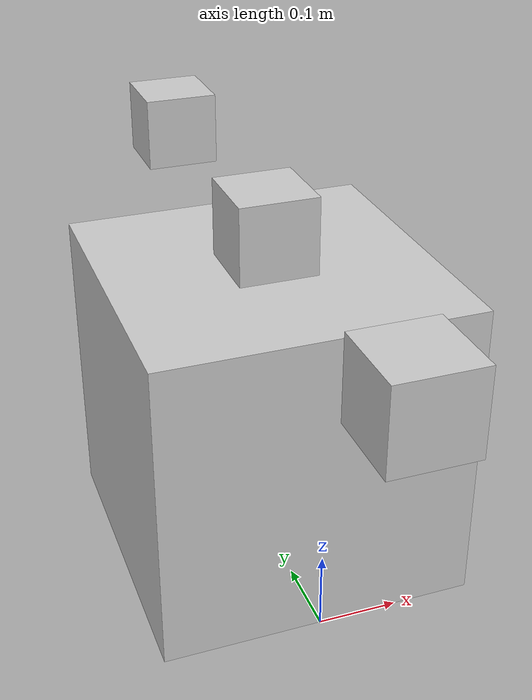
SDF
<?xml version="1.0"?>
<sdf version="1.6">
  <world name="default">

    <model name="M123">
      <model name="M1">
        <pose>0 -0.2 0.45 0 0 0</pose>
        <static>false</static>
        <link name="link">
          <collision name="collision">
            <geometry>
              <box>
                <size>0.1 0.1 0.1</size>
              </box>
            </geometry>
          </collision>
          <visual name="visual">
            <geometry>
              <box>
                <size>0.1 0.1 0.1</size>
              </box>
            </geometry>
            <material>
              <ambient>0.8 0.8 0.8 1</ambient>
              <diffuse>0.8 0.8 0.8 1</diffuse>
              <specular>0.8 0.8 0.8 1</specular>
            </material>
          </visual>
        </link>
      </model>

      <model name="M2">
        <pose>0 0.2 0.45 0 0 0</pose>
        <static>false</static>
        <link name="link">
          <collision name="collision">
            <geometry>
              <box>
                <size>0.1 0.1 0.1</size>
              </box>
            </geometry>
          </collision>
          <visual name="visual">
            <geometry>
              <box>
                <size>0.1 0.1 0.1</size>
              </box>
            </geometry>
            <material>
              <ambient>0.8 0.8 0.8 1</ambient>
              <diffuse>0.8 0.8 0.8 1</diffuse>
              <specular>0.8 0.8 0.8 1</specular>
            </material>
          </visual>
        </link>
      </model>

      <model name="M3">
        <pose>0 0.6 0.45 0 0 0</pose>
        <static>false</static>
        <link name="link">
          <collision name="collision">
            <geometry>
              <box>
                <size>0.1 0.1 0.1</size>
              </box>
            </geometry>
          </collision>
          <visual name="visual">
            <geometry>
              <box>
                <size>0.1 0.1 0.1</size>
              </box>
            </geometry>
            <material>
              <ambient>0.8 0.8 0.8 1</ambient>
              <diffuse>0.8 0.8 0.8 1</diffuse>
              <specular>0.8 0.8 0.8 1</specular>
            </material>
          </visual>
        </link>
      </model>

      <joint name="J12" type="fixed">
        <parent>M1::link</parent>
        <child>M2::link</child>
      </joint>

      <joint name="J32" type="fixed">
        <parent>M1::link</parent>
        <child>M2::link</child>
      </joint>

    </model>

    <model name="tabletop">
      <pose>0 0.2 0.2 0 0 0</pose>
      <static>true</static>
      <link name="link">
        <collision name="collision">
          <geometry>
            <box>
              <size>0.4 0.4 0.4</size>
            </box>
          </geometry>
        </collision>
        <visual name="visual">
          <geometry>
            <box>
              <size>0.4 0.4 0.4</size>
            </box>
          </geometry>
          <material>
            <ambient>0.8 0.8 0.8 1</ambient>
            <diffuse>0.8 0.8 0.8 1</diffuse>
            <specular>0.8 0.8 0.8 1</specular>
          </material>
        </visual>
      </link>
    </model>

  </world>
</sdf>
